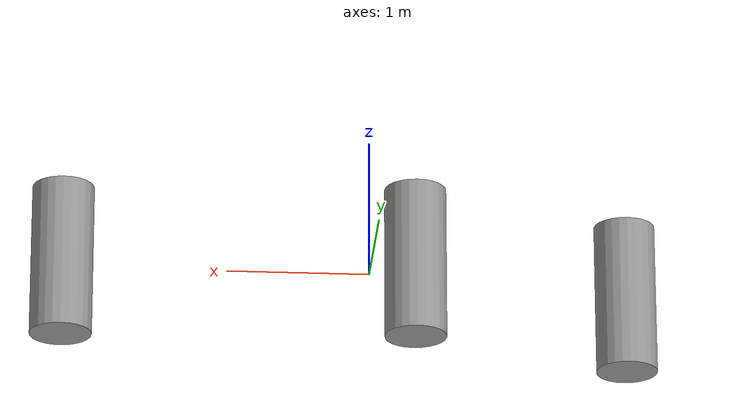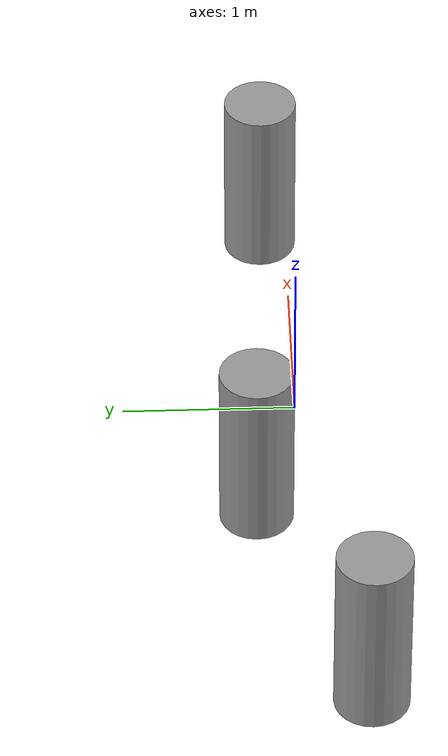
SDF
<?xml version='1.0'?>
<sdf version='1.6'>
  <model name='cylinder'>
    <link name='link_0'>
      <pose frame=''>2.15307 0.129751 0 0 -0 0</pose>
      <inertial>
        <mass>1</mass>
        <inertia>
          <ixx>1</ixx>
          <ixy>0</ixy>
          <ixz>0</ixz>
          <iyy>1</iyy>
          <iyz>0</iyz>
          <izz>1</izz>
        </inertia>
        <pose frame=''>0 0 0 0 -0 0</pose>
      </inertial>
      <visual name='visual'>
        <pose frame=''>0 0 0 0 -0 0</pose>
        <geometry>
          <cylinder>
            <radius>0.216523</radius>
            <length>1.09461</length>
          </cylinder>
        </geometry>
        <material>
          <lighting>1</lighting>
          <script>
            <uri>file://media/materials/scripts/gazebo.material</uri>
            <name>Gazebo/Grey</name>
          </script>
          <ambient>0.3 0.3 0.3 1</ambient>
          <diffuse>0.7 0.7 0.7 1</diffuse>
          <specular>0.01 0.01 0.01 1</specular>
          <emissive>0 0 0 1</emissive>
        </material>
        <cast_shadows>1</cast_shadows>
        <transparency>0</transparency>
      </visual>
      <collision name='collision'>
        <laser_retro>0</laser_retro>
        <max_contacts>10</max_contacts>
        <pose frame=''>0 0 0 0 -0 0</pose>
        <geometry>
          <cylinder>
            <radius>0.216523</radius>
            <length>1.09461</length>
          </cylinder>
        </geometry>
        <surface>
          <friction>
            <ode>
              <mu>1</mu>
              <mu2>1</mu2>
              <fdir1>0 0 0</fdir1>
              <slip1>0</slip1>
              <slip2>0</slip2>
            </ode>
            <torsional>
              <coefficient>1</coefficient>
              <patch_radius>0</patch_radius>
              <surface_radius>0</surface_radius>
              <use_patch_radius>1</use_patch_radius>
              <ode>
                <slip>0</slip>
              </ode>
            </torsional>
          </friction>
          <bounce>
            <restitution_coefficient>0</restitution_coefficient>
            <threshold>1e+06</threshold>
          </bounce>
          <contact>
            <collide_without_contact>0</collide_without_contact>
            <collide_without_contact_bitmask>1</collide_without_contact_bitmask>
            <collide_bitmask>1</collide_bitmask>
            <ode>
              <soft_cfm>0</soft_cfm>
              <soft_erp>0.2</soft_erp>
              <kp>1e+13</kp>
              <kd>1</kd>
              <max_vel>0.01</max_vel>
              <min_depth>0</min_depth>
            </ode>
            <bullet>
              <split_impulse>1</split_impulse>
              <split_impulse_penetration_threshold>-0.01</split_impulse_penetration_threshold>
              <soft_cfm>0</soft_cfm>
              <soft_erp>0.2</soft_erp>
              <kp>1e+13</kp>
              <kd>1</kd>
            </bullet>
          </contact>
        </surface>
      </collision>
    </link>
    <link name='link_0_clone_clone'>
      <pose frame=''>-0.306135 0.231985 0 0 -0 0</pose>
      <inertial>
        <mass>1</mass>
        <inertia>
          <ixx>1</ixx>
          <ixy>0</ixy>
          <ixz>0</ixz>
          <iyy>1</iyy>
          <iyz>0</iyz>
          <izz>1</izz>
        </inertia>
        <pose frame=''>0 0 0 0 -0 0</pose>
      </inertial>
      <visual name='visual'>
        <pose frame=''>0 0 0 0 -0 0</pose>
        <geometry>
          <cylinder>
            <radius>0.216523</radius>
            <length>1.09461</length>
          </cylinder>
        </geometry>
        <material>
          <lighting>1</lighting>
          <script>
            <uri>file://media/materials/scripts/gazebo.material</uri>
            <name>Gazebo/Grey</name>
          </script>
          <ambient>0.3 0.3 0.3 1</ambient>
          <diffuse>0.7 0.7 0.7 1</diffuse>
          <specular>0.01 0.01 0.01 1</specular>
          <emissive>0 0 0 1</emissive>
          <shader type='pixel'/>
        </material>
        <cast_shadows>1</cast_shadows>
        <transparency>0</transparency>
      </visual>
      <collision name='collision'>
        <laser_retro>0</laser_retro>
        <max_contacts>10</max_contacts>
        <pose frame=''>0 0 0 0 -0 0</pose>
        <geometry>
          <cylinder>
            <radius>0.216523</radius>
            <length>1.09461</length>
          </cylinder>
        </geometry>
        <surface>
          <friction>
            <ode>
              <mu>1</mu>
              <mu2>1</mu2>
              <fdir1>0 0 0</fdir1>
              <slip1>0</slip1>
              <slip2>0</slip2>
            </ode>
            <torsional>
              <coefficient>1</coefficient>
              <patch_radius>0</patch_radius>
              <surface_radius>0</surface_radius>
              <use_patch_radius>1</use_patch_radius>
              <ode>
                <slip>0</slip>
              </ode>
            </torsional>
          </friction>
          <bounce>
            <restitution_coefficient>0</restitution_coefficient>
            <threshold>1e+06</threshold>
          </bounce>
          <contact>
            <collide_without_contact>0</collide_without_contact>
            <collide_without_contact_bitmask>1</collide_without_contact_bitmask>
            <collide_bitmask>1</collide_bitmask>
            <ode>
              <soft_cfm>0</soft_cfm>
              <soft_erp>0.2</soft_erp>
              <kp>1e+13</kp>
              <kd>1</kd>
              <max_vel>0.01</max_vel>
              <min_depth>0</min_depth>
            </ode>
            <bullet>
              <split_impulse>1</split_impulse>
              <split_impulse_penetration_threshold>-0.01</split_impulse_penetration_threshold>
              <soft_cfm>0</soft_cfm>
              <soft_erp>0.2</soft_erp>
              <kp>1e+13</kp>
              <kd>1</kd>
            </bullet>
          </contact>
        </surface>
      </collision>
    </link>
    <link name='link_0_clone_clone_1'>
      <pose frame=''>-1.84693 -0.361736 0 0 -0 0</pose>
      <inertial>
        <mass>1</mass>
        <inertia>
          <ixx>1</ixx>
          <ixy>0</ixy>
          <ixz>0</ixz>
          <iyy>1</iyy>
          <iyz>0</iyz>
          <izz>1</izz>
        </inertia>
        <pose frame=''>0 0 0 0 -0 0</pose>
      </inertial>
      <visual name='visual'>
        <pose frame=''>0 0 0 0 -0 0</pose>
        <geometry>
          <cylinder>
            <radius>0.216523</radius>
            <length>1.09461</length>
          </cylinder>
        </geometry>
        <material>
          <lighting>1</lighting>
          <script>
            <uri>file://media/materials/scripts/gazebo.material</uri>
            <name>Gazebo/Grey</name>
          </script>
          <ambient>0.3 0.3 0.3 1</ambient>
          <diffuse>0.7 0.7 0.7 1</diffuse>
          <specular>0.01 0.01 0.01 1</specular>
          <emissive>0 0 0 1</emissive>
          <shader type='pixel'/>
        </material>
        <cast_shadows>1</cast_shadows>
        <transparency>0</transparency>
      </visual>
      <collision name='collision'>
        <laser_retro>0</laser_retro>
        <max_contacts>10</max_contacts>
        <pose frame=''>0 0 0 0 -0 0</pose>
        <geometry>
          <cylinder>
            <radius>0.216523</radius>
            <length>1.09461</length>
          </cylinder>
        </geometry>
        <surface>
          <friction>
            <ode>
              <mu>1</mu>
              <mu2>1</mu2>
              <fdir1>0 0 0</fdir1>
              <slip1>0</slip1>
              <slip2>0</slip2>
            </ode>
            <torsional>
              <coefficient>1</coefficient>
              <patch_radius>0</patch_radius>
              <surface_radius>0</surface_radius>
              <use_patch_radius>1</use_patch_radius>
              <ode>
                <slip>0</slip>
              </ode>
            </torsional>
          </friction>
          <bounce>
            <restitution_coefficient>0</restitution_coefficient>
            <threshold>1e+06</threshold>
          </bounce>
          <contact>
            <collide_without_contact>0</collide_without_contact>
            <collide_without_contact_bitmask>1</collide_without_contact_bitmask>
            <collide_bitmask>1</collide_bitmask>
            <ode>
              <soft_cfm>0</soft_cfm>
              <soft_erp>0.2</soft_erp>
              <kp>1e+13</kp>
              <kd>1</kd>
              <max_vel>0.01</max_vel>
              <min_depth>0</min_depth>
            </ode>
            <bullet>
              <split_impulse>1</split_impulse>
              <split_impulse_penetration_threshold>-0.01</split_impulse_penetration_threshold>
              <soft_cfm>0</soft_cfm>
              <soft_erp>0.2</soft_erp>
              <kp>1e+13</kp>
              <kd>1</kd>
            </bullet>
          </contact>
        </surface>
      </collision>
    </link>
    <static>1</static>
  </model>
</sdf>
